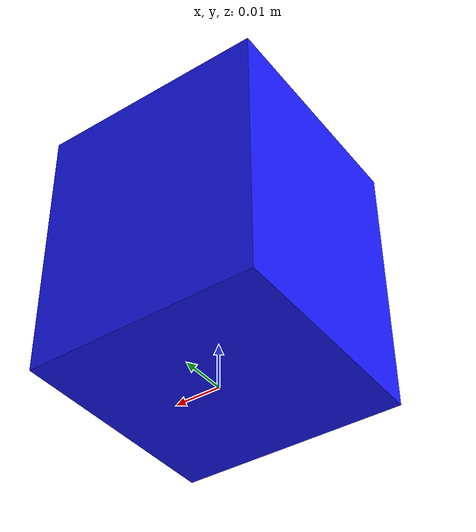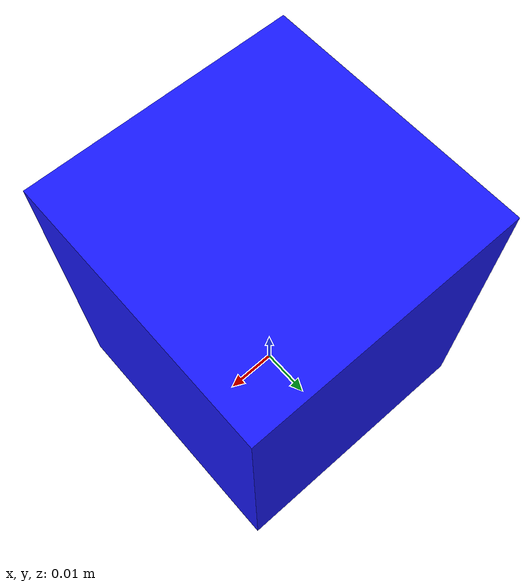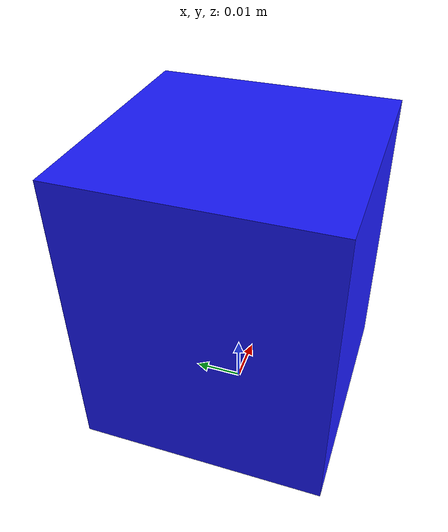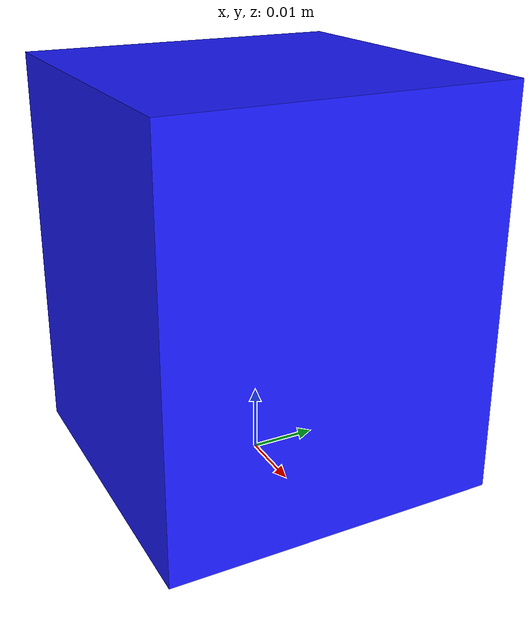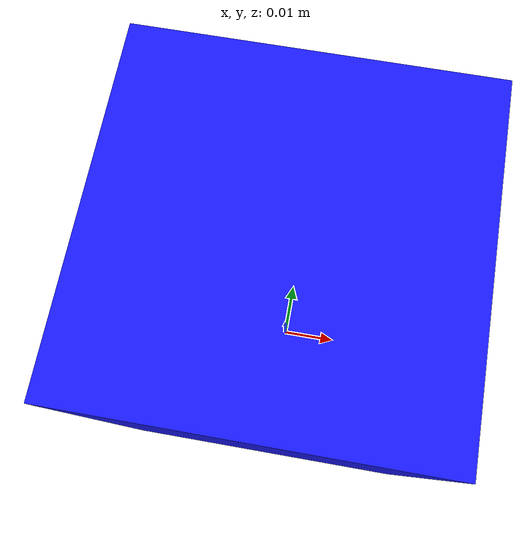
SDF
<?xml version='1.0'?>
<sdf version='1.7'>
  <model name='template_cube'>
    <link name='base_link'>
      <inertial>
        <mass>0.05</mass>
        <inertia>
          <ixx>1.6875e-06</ixx>
          <ixy>0</ixy>
          <ixz>0</ixz>
          <iyy>1.6875e-06</iyy>
          <iyz>0</iyz>
          <izz>1.6875e-06</izz>
        </inertia>
        <pose>0 0 0.01 0 0 0</pose>
      </inertial>
      <pose>0 0 0 0 0 0</pose>
      <visual name='visual'>
        <pose>0 0 0.03 0 0 0</pose>
        <geometry>
            <box>
                <size>0.05 0.05 0.06</size>
            </box>
        </geometry>
        <material>
          <diffuse>0.1 0.1 1 1</diffuse>
        </material>
      </visual>
      <collision name='collision'>
        <pose>0 0 0.03 0 0 0</pose>
        <geometry>
            <box>
              <size>0.049 0.049 0.059</size>
            </box>
        </geometry>
      </collision>
      <!-- balls help with collisions -->
      <collision name='ball1'>
        <pose>-0.025 -0.025 0.005 0 0 0</pose>
        <geometry>
          <sphere>
            <radius>1e-7</radius>
          </sphere>
        </geometry>
      </collision>
      <collision name='ball2'>
        <pose>0.025 -0.025 0.005 0 0 0</pose>
        <geometry>
          <sphere>
            <radius>1e-7</radius>
          </sphere>
        </geometry>
      </collision>
      <collision name='ball3'>
        <pose>-0.025 0.025 0.005 0 0 0</pose>
        <geometry>
          <sphere>
            <radius>1e-7</radius>
          </sphere>
        </geometry>
      </collision>
      <collision name='ball4'>
        <pose>0.025 0.025 0.005 0 0 0</pose>
        <geometry>
          <sphere>
            <radius>1e-7</radius>
          </sphere>
        </geometry>
      </collision>
      <collision name='ball5'>
        <pose>-0.025 -0.025 0.06 0 0 0</pose>
        <geometry>
          <sphere>
            <radius>1e-7</radius>
          </sphere>
        </geometry>
      </collision>
      <collision name='ball6'>
        <pose>0.025 -0.025 0.06 0 0 0</pose>
        <geometry>
          <sphere>
            <radius>1e-7</radius>
          </sphere>
        </geometry>
      </collision>
      <collision name='ball7'>
        <pose>-0.025 0.025 0.06 0 0 0</pose>
        <geometry>
          <sphere>
            <radius>1e-7</radius>
          </sphere>
        </geometry>
      </collision>
      <collision name='ball8'>
        <pose>0.025 0.025 0.06 0 0 0</pose>
        <geometry>
          <sphere>
            <radius>1e-7</radius>
          </sphere>
        </geometry>
      </collision>
    </link>
  </model>
</sdf>
